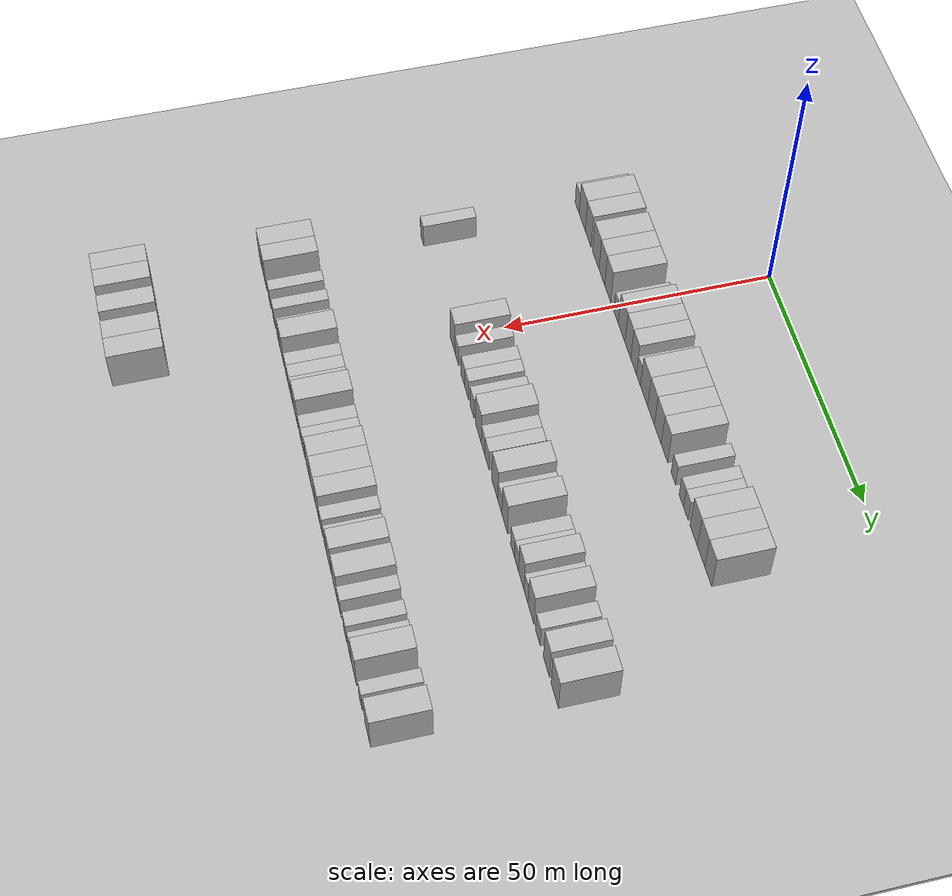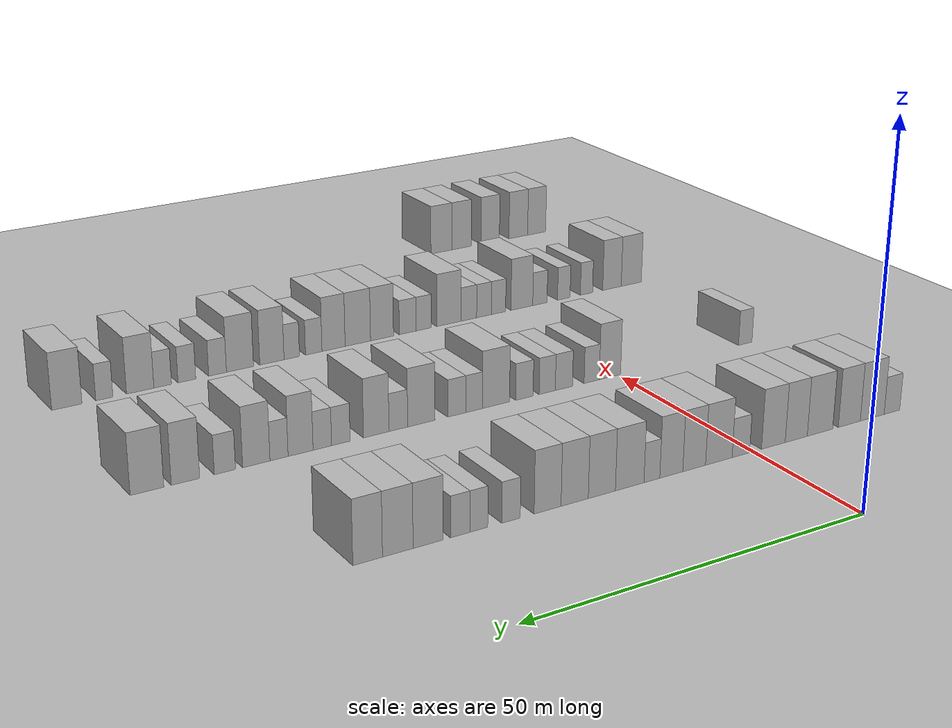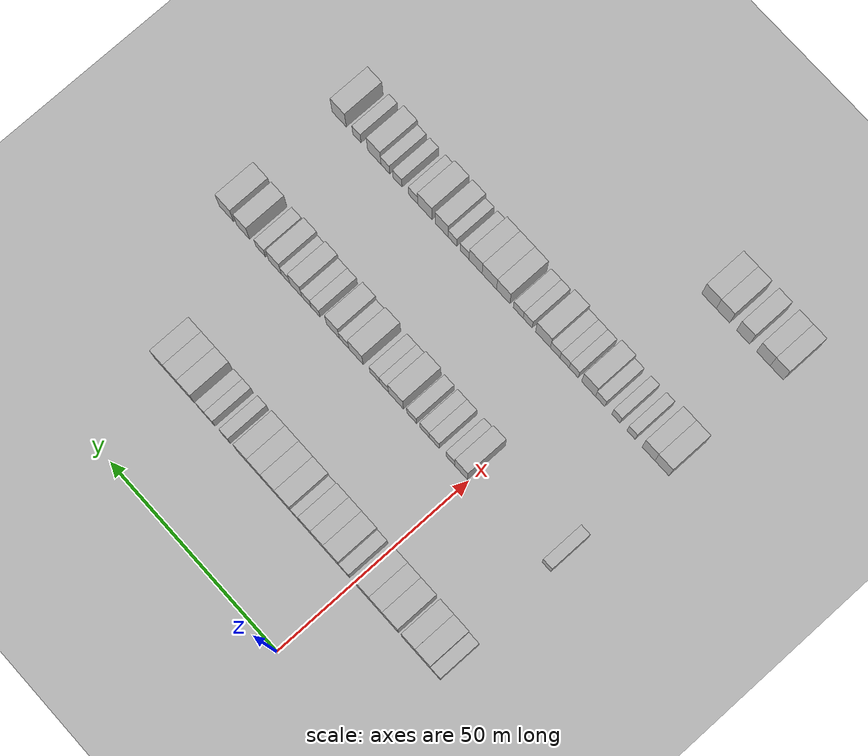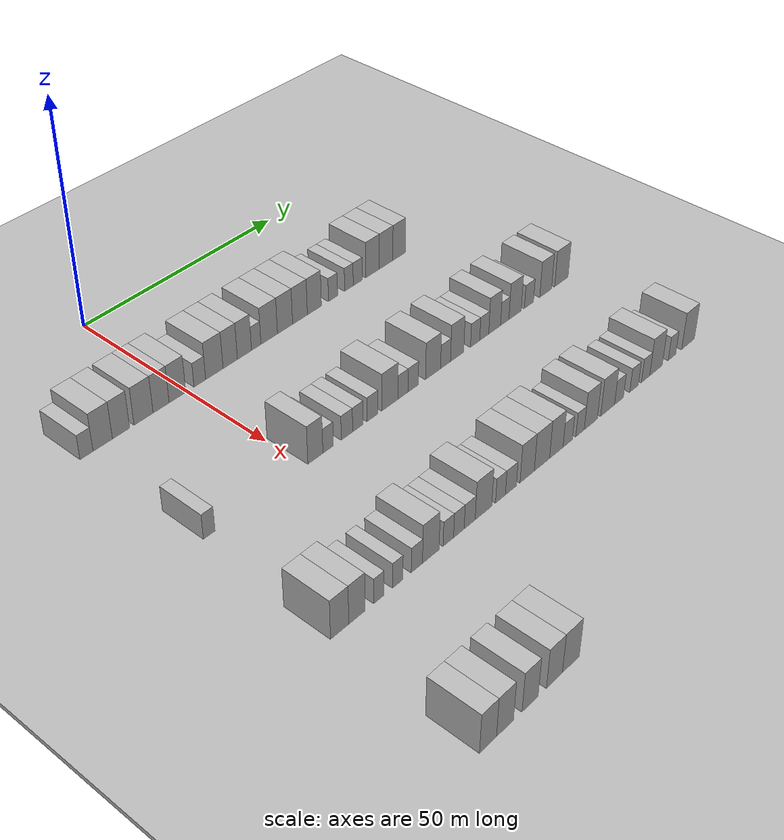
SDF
<sdf version="1.6">
 <world name="default">
  <include><name>ground_plane_1</name><uri>model://HANNAS_ground_plane</uri></include>
  <include>
   <name>ground_plane_2</name>
   <uri>model://HANNAS_ground_plane</uri>
   <pose>100 0 0  0 0 0</pose>
  </include>
  <model name="building_108">
   <static>1</static>
   <pose>25.0000 -23.7930 0 0.000000 0.000000 0.000000</pose>
   <link name="link">
    <pose>0 0 3.00 0 0 0</pose>
    <collision name="collision"><geometry><box><size>10.0000 2.8902 6.0000</size></box></geometry></collision>
    <visual name="visual">
     <cast_shadows>0</cast_shadows>
     <geometry><box><size>10.0000 2.8902 6.0000</size></box></geometry>
     <material>
      <script>
       <uri>model://HANNAS_wall/materials/scripts</uri>
       <uri>model://HANNAS_wall/materials/textures</uri>
       <name>vrc/HANNAS_wall</name>
      </script>
     </material>
    </visual>
   </link>
  </model>
  <model name="building_109">
   <static>1</static>
   <pose>25.0000 -20.1689 0 0.000000 0.000000 0.000000</pose>
   <link name="link">
    <pose>0 0 4.50 0 0 0</pose>
    <collision name="collision"><geometry><box><size>10.0000 4.3581 9.0000</size></box></geometry></collision>
    <visual name="visual">
     <cast_shadows>0</cast_shadows>
     <geometry><box><size>10.0000 4.3581 9.0000</size></box></geometry>
     <material>
      <script>
       <uri>model://HANNAS_wall/materials/scripts</uri>
       <uri>model://HANNAS_wall/materials/textures</uri>
       <name>vrc/HANNAS_wall</name>
      </script>
     </material>
    </visual>
   </link>
  </model>
  <model name="building_110">
   <static>1</static>
   <pose>25.0000 -16.0170 0 0.000000 0.000000 0.000000</pose>
   <link name="link">
    <pose>0 0 4.50 0 0 0</pose>
    <collision name="collision"><geometry><box><size>10.0000 3.9456 9.0000</size></box></geometry></collision>
    <visual name="visual">
     <cast_shadows>0</cast_shadows>
     <geometry><box><size>10.0000 3.9456 9.0000</size></box></geometry>
     <material>
      <script>
       <uri>model://HANNAS_wall/materials/scripts</uri>
       <uri>model://HANNAS_wall/materials/textures</uri>
       <name>vrc/HANNAS_wall</name>
      </script>
     </material>
    </visual>
   </link>
  </model>
  <model name="building_111">
   <static>1</static>
   <pose>25.0000 -10.8124 0 0.000000 0.000000 0.000000</pose>
   <link name="link">
    <pose>0 0 4.50 0 0 0</pose>
    <collision name="collision"><geometry><box><size>10.0000 4.4637 9.0000</size></box></geometry></collision>
    <visual name="visual">
     <cast_shadows>0</cast_shadows>
     <geometry><box><size>10.0000 4.4637 9.0000</size></box></geometry>
     <material>
      <script>
       <uri>model://HANNAS_wall/materials/scripts</uri>
       <uri>model://HANNAS_wall/materials/textures</uri>
       <name>vrc/HANNAS_wall</name>
      </script>
     </material>
    </visual>
   </link>
  </model>
  <model name="building_112">
   <static>1</static>
   <pose>25.0000 -6.6682 0 0.000000 0.000000 0.000000</pose>
   <link name="link">
    <pose>0 0 4.50 0 0 0</pose>
    <collision name="collision"><geometry><box><size>10.0000 3.8247 9.0000</size></box></geometry></collision>
    <visual name="visual">
     <cast_shadows>0</cast_shadows>
     <geometry><box><size>10.0000 3.8247 9.0000</size></box></geometry>
     <material>
      <script>
       <uri>model://HANNAS_wall/materials/scripts</uri>
       <uri>model://HANNAS_wall/materials/textures</uri>
       <name>vrc/HANNAS_wall</name>
      </script>
     </material>
    </visual>
   </link>
  </model>
  <model name="building_113">
   <static>1</static>
   <pose>25.0000 -2.7365 0 0.000000 0.000000 0.000000</pose>
   <link name="link">
    <pose>0 0 4.50 0 0 0</pose>
    <collision name="collision"><geometry><box><size>10.0000 4.0388 9.0000</size></box></geometry></collision>
    <visual name="visual">
     <cast_shadows>0</cast_shadows>
     <geometry><box><size>10.0000 4.0388 9.0000</size></box></geometry>
     <material>
      <script>
       <uri>model://HANNAS_wall/materials/scripts</uri>
       <uri>model://HANNAS_wall/materials/textures</uri>
       <name>vrc/HANNAS_wall</name>
      </script>
     </material>
    </visual>
   </link>
  </model>
  <model name="building_114">
   <static>1</static>
   <pose>25.0000 2.7343 0 0.000000 0.000000 0.000000</pose>
   <link name="link">
    <pose>0 0 3.00 0 0 0</pose>
    <collision name="collision"><geometry><box><size>10.0000 2.9027 6.0000</size></box></geometry></collision>
    <visual name="visual">
     <cast_shadows>0</cast_shadows>
     <geometry><box><size>10.0000 2.9027 6.0000</size></box></geometry>
     <material>
      <script>
       <uri>model://HANNAS_wall/materials/scripts</uri>
       <uri>model://HANNAS_wall/materials/textures</uri>
       <name>vrc/HANNAS_wall</name>
      </script>
     </material>
    </visual>
   </link>
  </model>
  <model name="building_115">
   <static>1</static>
   <pose>25.0000 6.3689 0 0.000000 0.000000 0.000000</pose>
   <link name="link">
    <pose>0 0 4.50 0 0 0</pose>
    <collision name="collision"><geometry><box><size>10.0000 4.3665 9.0000</size></box></geometry></collision>
    <visual name="visual">
     <cast_shadows>0</cast_shadows>
     <geometry><box><size>10.0000 4.3665 9.0000</size></box></geometry>
     <material>
      <script>
       <uri>model://HANNAS_wall/materials/scripts</uri>
       <uri>model://HANNAS_wall/materials/textures</uri>
       <name>vrc/HANNAS_wall</name>
      </script>
     </material>
    </visual>
   </link>
  </model>
  <model name="building_116">
   <static>1</static>
   <pose>25.0000 10.3899 0 0.000000 0.000000 0.000000</pose>
   <link name="link">
    <pose>0 0 4.50 0 0 0</pose>
    <collision name="collision"><geometry><box><size>10.0000 3.6756 9.0000</size></box></geometry></collision>
    <visual name="visual">
     <cast_shadows>0</cast_shadows>
     <geometry><box><size>10.0000 3.6756 9.0000</size></box></geometry>
     <material>
      <script>
       <uri>model://HANNAS_wall/materials/scripts</uri>
       <uri>model://HANNAS_wall/materials/textures</uri>
       <name>vrc/HANNAS_wall</name>
      </script>
     </material>
    </visual>
   </link>
  </model>
  <model name="building_117">
   <static>1</static>
   <pose>25.0000 14.0531 0 0.000000 0.000000 0.000000</pose>
   <link name="link">
    <pose>0 0 4.50 0 0 0</pose>
    <collision name="collision"><geometry><box><size>10.0000 3.6508 9.0000</size></box></geometry></collision>
    <visual name="visual">
     <cast_shadows>0</cast_shadows>
     <geometry><box><size>10.0000 3.6508 9.0000</size></box></geometry>
     <material>
      <script>
       <uri>model://HANNAS_wall/materials/scripts</uri>
       <uri>model://HANNAS_wall/materials/textures</uri>
       <name>vrc/HANNAS_wall</name>
      </script>
     </material>
    </visual>
   </link>
  </model>
  <model name="building_118">
   <static>1</static>
   <pose>25.0000 17.1193 0 0.000000 0.000000 0.000000</pose>
   <link name="link">
    <pose>0 0 3.00 0 0 0</pose>
    <collision name="collision"><geometry><box><size>10.0000 2.4816 6.0000</size></box></geometry></collision>
    <visual name="visual">
     <cast_shadows>0</cast_shadows>
     <geometry><box><size>10.0000 2.4816 6.0000</size></box></geometry>
     <material>
      <script>
       <uri>model://HANNAS_wall/materials/scripts</uri>
       <uri>model://HANNAS_wall/materials/textures</uri>
       <name>vrc/HANNAS_wall</name>
      </script>
     </material>
    </visual>
   </link>
  </model>
  <model name="building_119">
   <static>1</static>
   <pose>25.0000 20.5670 0 0.000000 0.000000 0.000000</pose>
   <link name="link">
    <pose>0 0 4.50 0 0 0</pose>
    <collision name="collision"><geometry><box><size>10.0000 4.4138 9.0000</size></box></geometry></collision>
    <visual name="visual">
     <cast_shadows>0</cast_shadows>
     <geometry><box><size>10.0000 4.4138 9.0000</size></box></geometry>
     <material>
      <script>
       <uri>model://HANNAS_wall/materials/scripts</uri>
       <uri>model://HANNAS_wall/materials/textures</uri>
       <name>vrc/HANNAS_wall</name>
      </script>
     </material>
    </visual>
   </link>
  </model>
  <model name="building_120">
   <static>1</static>
   <pose>25.0000 24.8281 0 0.000000 0.000000 0.000000</pose>
   <link name="link">
    <pose>0 0 4.50 0 0 0</pose>
    <collision name="collision"><geometry><box><size>10.0000 4.1083 9.0000</size></box></geometry></collision>
    <visual name="visual">
     <cast_shadows>0</cast_shadows>
     <geometry><box><size>10.0000 4.1083 9.0000</size></box></geometry>
     <material>
      <script>
       <uri>model://HANNAS_wall/materials/scripts</uri>
       <uri>model://HANNAS_wall/materials/textures</uri>
       <name>vrc/HANNAS_wall</name>
      </script>
     </material>
    </visual>
   </link>
  </model>
  <model name="building_121">
   <static>1</static>
   <pose>25.0000 28.9128 0 0.000000 0.000000 0.000000</pose>
   <link name="link">
    <pose>0 0 4.50 0 0 0</pose>
    <collision name="collision"><geometry><box><size>10.0000 4.0611 9.0000</size></box></geometry></collision>
    <visual name="visual">
     <cast_shadows>0</cast_shadows>
     <geometry><box><size>10.0000 4.0611 9.0000</size></box></geometry>
     <material>
      <script>
       <uri>model://HANNAS_wall/materials/scripts</uri>
       <uri>model://HANNAS_wall/materials/textures</uri>
       <name>vrc/HANNAS_wall</name>
      </script>
     </material>
    </visual>
   </link>
  </model>
  <model name="building_122">
   <static>1</static>
   <pose>25.0000 32.9144 0 0.000000 0.000000 0.000000</pose>
   <link name="link">
    <pose>0 0 4.50 0 0 0</pose>
    <collision name="collision"><geometry><box><size>10.0000 3.9421 9.0000</size></box></geometry></collision>
    <visual name="visual">
     <cast_shadows>0</cast_shadows>
     <geometry><box><size>10.0000 3.9421 9.0000</size></box></geometry>
     <material>
      <script>
       <uri>model://HANNAS_wall/materials/scripts</uri>
       <uri>model://HANNAS_wall/materials/textures</uri>
       <name>vrc/HANNAS_wall</name>
      </script>
     </material>
    </visual>
   </link>
  </model>
  <model name="building_123">
   <static>1</static>
   <pose>25.0000 38.2008 0 0.000000 0.000000 0.000000</pose>
   <link name="link">
    <pose>0 0 3.00 0 0 0</pose>
    <collision name="collision"><geometry><box><size>10.0000 2.6305 6.0000</size></box></geometry></collision>
    <visual name="visual">
     <cast_shadows>0</cast_shadows>
     <geometry><box><size>10.0000 2.6305 6.0000</size></box></geometry>
     <material>
      <script>
       <uri>model://HANNAS_wall/materials/scripts</uri>
       <uri>model://HANNAS_wall/materials/textures</uri>
       <name>vrc/HANNAS_wall</name>
      </script>
     </material>
    </visual>
   </link>
  </model>
  <model name="building_124">
   <static>1</static>
   <pose>25.0000 42.7710 0 0.000000 0.000000 0.000000</pose>
   <link name="link">
    <pose>0 0 3.00 0 0 0</pose>
    <collision name="collision"><geometry><box><size>10.0000 2.5099 6.0000</size></box></geometry></collision>
    <visual name="visual">
     <cast_shadows>0</cast_shadows>
     <geometry><box><size>10.0000 2.5099 6.0000</size></box></geometry>
     <material>
      <script>
       <uri>model://HANNAS_wall/materials/scripts</uri>
       <uri>model://HANNAS_wall/materials/textures</uri>
       <name>vrc/HANNAS_wall</name>
      </script>
     </material>
    </visual>
   </link>
  </model>
  <model name="building_125">
   <static>1</static>
   <pose>25.0000 45.3715 0 0.000000 0.000000 0.000000</pose>
   <link name="link">
    <pose>0 0 3.00 0 0 0</pose>
    <collision name="collision"><geometry><box><size>10.0000 2.6910 6.0000</size></box></geometry></collision>
    <visual name="visual">
     <cast_shadows>0</cast_shadows>
     <geometry><box><size>10.0000 2.6910 6.0000</size></box></geometry>
     <material>
      <script>
       <uri>model://HANNAS_wall/materials/scripts</uri>
       <uri>model://HANNAS_wall/materials/textures</uri>
       <name>vrc/HANNAS_wall</name>
      </script>
     </material>
    </visual>
   </link>
  </model>
  <model name="building_126">
   <static>1</static>
   <pose>25.0000 49.7589 0 0.000000 0.000000 0.000000</pose>
   <link name="link">
    <pose>0 0 4.50 0 0 0</pose>
    <collision name="collision"><geometry><box><size>10.0000 4.0838 9.0000</size></box></geometry></collision>
    <visual name="visual">
     <cast_shadows>0</cast_shadows>
     <geometry><box><size>10.0000 4.0838 9.0000</size></box></geometry>
     <material>
      <script>
       <uri>model://HANNAS_wall/materials/scripts</uri>
       <uri>model://HANNAS_wall/materials/textures</uri>
       <name>vrc/HANNAS_wall</name>
      </script>
     </material>
    </visual>
   </link>
  </model>
  <model name="building_127">
   <static>1</static>
   <pose>25.0000 53.8396 0 0.000000 0.000000 0.000000</pose>
   <link name="link">
    <pose>0 0 4.50 0 0 0</pose>
    <collision name="collision"><geometry><box><size>10.0000 4.0776 9.0000</size></box></geometry></collision>
    <visual name="visual">
     <cast_shadows>0</cast_shadows>
     <geometry><box><size>10.0000 4.0776 9.0000</size></box></geometry>
     <material>
      <script>
       <uri>model://HANNAS_wall/materials/scripts</uri>
       <uri>model://HANNAS_wall/materials/textures</uri>
       <name>vrc/HANNAS_wall</name>
      </script>
     </material>
    </visual>
   </link>
  </model>
  <model name="building_128">
   <static>1</static>
   <pose>25.0000 57.8211 0 0.000000 0.000000 0.000000</pose>
   <link name="link">
    <pose>0 0 4.50 0 0 0</pose>
    <collision name="collision"><geometry><box><size>10.0000 3.8853 9.0000</size></box></geometry></collision>
    <visual name="visual">
     <cast_shadows>0</cast_shadows>
     <geometry><box><size>10.0000 3.8853 9.0000</size></box></geometry>
     <material>
      <script>
       <uri>model://HANNAS_wall/materials/scripts</uri>
       <uri>model://HANNAS_wall/materials/textures</uri>
       <name>vrc/HANNAS_wall</name>
      </script>
     </material>
    </visual>
   </link>
  </model>
  <model name="building_331">
   <static>1</static>
   <pose>55.0000 -22.7726 0 0.000000 0.000000 0.000000</pose>
   <link name="link">
    <pose>0 0 3.00 0 0 0</pose>
    <collision name="collision"><geometry><box><size>10.0000 2.5860 6.0000</size></box></geometry></collision>
    <visual name="visual">
     <cast_shadows>0</cast_shadows>
     <geometry><box><size>10.0000 2.5860 6.0000</size></box></geometry>
     <material>
      <script>
       <uri>model://HANNAS_wall/materials/scripts</uri>
       <uri>model://HANNAS_wall/materials/textures</uri>
       <name>vrc/HANNAS_wall</name>
      </script>
     </material>
    </visual>
   </link>
  </model>
  <model name="building_332">
   <static>1</static>
   <pose>55.0000 2.1369 0 0.000000 0.000000 0.000000</pose>
   <link name="link">
    <pose>0 0 4.50 0 0 0</pose>
    <collision name="collision"><geometry><box><size>10.0000 3.7443 9.0000</size></box></geometry></collision>
    <visual name="visual">
     <cast_shadows>0</cast_shadows>
     <geometry><box><size>10.0000 3.7443 9.0000</size></box></geometry>
     <material>
      <script>
       <uri>model://HANNAS_wall/materials/scripts</uri>
       <uri>model://HANNAS_wall/materials/textures</uri>
       <name>vrc/HANNAS_wall</name>
      </script>
     </material>
    </visual>
   </link>
  </model>
  <model name="building_333">
   <static>1</static>
   <pose>55.0000 5.3281 0 0.000000 0.000000 0.000000</pose>
   <link name="link">
    <pose>0 0 3.00 0 0 0</pose>
    <collision name="collision"><geometry><box><size>10.0000 2.6382 6.0000</size></box></geometry></collision>
    <visual name="visual">
     <cast_shadows>0</cast_shadows>
     <geometry><box><size>10.0000 2.6382 6.0000</size></box></geometry>
     <material>
      <script>
       <uri>model://HANNAS_wall/materials/scripts</uri>
       <uri>model://HANNAS_wall/materials/textures</uri>
       <name>vrc/HANNAS_wall</name>
      </script>
     </material>
    </visual>
   </link>
  </model>
  <model name="building_334">
   <static>1</static>
   <pose>55.0000 10.1101 0 0.000000 0.000000 0.000000</pose>
   <link name="link">
    <pose>0 0 3.00 0 0 0</pose>
    <collision name="collision"><geometry><box><size>10.0000 2.9258 6.0000</size></box></geometry></collision>
    <visual name="visual">
     <cast_shadows>0</cast_shadows>
     <geometry><box><size>10.0000 2.9258 6.0000</size></box></geometry>
     <material>
      <script>
       <uri>model://HANNAS_wall/materials/scripts</uri>
       <uri>model://HANNAS_wall/materials/textures</uri>
       <name>vrc/HANNAS_wall</name>
      </script>
     </material>
    </visual>
   </link>
  </model>
  <model name="building_335">
   <static>1</static>
   <pose>55.0000 12.9443 0 0.000000 0.000000 0.000000</pose>
   <link name="link">
    <pose>0 0 3.00 0 0 0</pose>
    <collision name="collision"><geometry><box><size>10.0000 2.7425 6.0000</size></box></geometry></collision>
    <visual name="visual">
     <cast_shadows>0</cast_shadows>
     <geometry><box><size>10.0000 2.7425 6.0000</size></box></geometry>
     <material>
      <script>
       <uri>model://HANNAS_wall/materials/scripts</uri>
       <uri>model://HANNAS_wall/materials/textures</uri>
       <name>vrc/HANNAS_wall</name>
      </script>
     </material>
    </visual>
   </link>
  </model>
  <model name="building_336">
   <static>1</static>
   <pose>55.0000 16.7691 0 0.000000 0.000000 0.000000</pose>
   <link name="link">
    <pose>0 0 3.00 0 0 0</pose>
    <collision name="collision"><geometry><box><size>10.0000 2.9071 6.0000</size></box></geometry></collision>
    <visual name="visual">
     <cast_shadows>0</cast_shadows>
     <geometry><box><size>10.0000 2.9071 6.0000</size></box></geometry>
     <material>
      <script>
       <uri>model://HANNAS_wall/materials/scripts</uri>
       <uri>model://HANNAS_wall/materials/textures</uri>
       <name>vrc/HANNAS_wall</name>
      </script>
     </material>
    </visual>
   </link>
  </model>
  <model name="building_337">
   <static>1</static>
   <pose>55.0000 21.4393 0 0.000000 0.000000 0.000000</pose>
   <link name="link">
    <pose>0 0 4.50 0 0 0</pose>
    <collision name="collision"><geometry><box><size>10.0000 4.4333 9.0000</size></box></geometry></collision>
    <visual name="visual">
     <cast_shadows>0</cast_shadows>
     <geometry><box><size>10.0000 4.4333 9.0000</size></box></geometry>
     <material>
      <script>
       <uri>model://HANNAS_wall/materials/scripts</uri>
       <uri>model://HANNAS_wall/materials/textures</uri>
       <name>vrc/HANNAS_wall</name>
      </script>
     </material>
    </visual>
   </link>
  </model>
  <model name="building_338">
   <static>1</static>
   <pose>55.0000 24.9954 0 0.000000 0.000000 0.000000</pose>
   <link name="link">
    <pose>0 0 3.00 0 0 0</pose>
    <collision name="collision"><geometry><box><size>10.0000 2.6789 6.0000</size></box></geometry></collision>
    <visual name="visual">
     <cast_shadows>0</cast_shadows>
     <geometry><box><size>10.0000 2.6789 6.0000</size></box></geometry>
     <material>
      <script>
       <uri>model://HANNAS_wall/materials/scripts</uri>
       <uri>model://HANNAS_wall/materials/textures</uri>
       <name>vrc/HANNAS_wall</name>
      </script>
     </material>
    </visual>
   </link>
  </model>
  <model name="building_339">
   <static>1</static>
   <pose>55.0000 27.7844 0 0.000000 0.000000 0.000000</pose>
   <link name="link">
    <pose>0 0 3.00 0 0 0</pose>
    <collision name="collision"><geometry><box><size>10.0000 2.8991 6.0000</size></box></geometry></collision>
    <visual name="visual">
     <cast_shadows>0</cast_shadows>
     <geometry><box><size>10.0000 2.8991 6.0000</size></box></geometry>
     <material>
      <script>
       <uri>model://HANNAS_wall/materials/scripts</uri>
       <uri>model://HANNAS_wall/materials/textures</uri>
       <name>vrc/HANNAS_wall</name>
      </script>
     </material>
    </visual>
   </link>
  </model>
  <model name="building_340">
   <static>1</static>
   <pose>55.0000 33.3721 0 0.000000 0.000000 0.000000</pose>
   <link name="link">
    <pose>0 0 4.50 0 0 0</pose>
    <collision name="collision"><geometry><box><size>10.0000 4.2763 9.0000</size></box></geometry></collision>
    <visual name="visual">
     <cast_shadows>0</cast_shadows>
     <geometry><box><size>10.0000 4.2763 9.0000</size></box></geometry>
     <material>
      <script>
       <uri>model://HANNAS_wall/materials/scripts</uri>
       <uri>model://HANNAS_wall/materials/textures</uri>
       <name>vrc/HANNAS_wall</name>
      </script>
     </material>
    </visual>
   </link>
  </model>
  <model name="building_341">
   <static>1</static>
   <pose>55.0000 36.9434 0 0.000000 0.000000 0.000000</pose>
   <link name="link">
    <pose>0 0 3.00 0 0 0</pose>
    <collision name="collision"><geometry><box><size>10.0000 2.8663 6.0000</size></box></geometry></collision>
    <visual name="visual">
     <cast_shadows>0</cast_shadows>
     <geometry><box><size>10.0000 2.8663 6.0000</size></box></geometry>
     <material>
      <script>
       <uri>model://HANNAS_wall/materials/scripts</uri>
       <uri>model://HANNAS_wall/materials/textures</uri>
       <name>vrc/HANNAS_wall</name>
      </script>
     </material>
    </visual>
   </link>
  </model>
  <model name="building_342">
   <static>1</static>
   <pose>55.0000 40.3128 0 0.000000 0.000000 0.000000</pose>
   <link name="link">
    <pose>0 0 4.50 0 0 0</pose>
    <collision name="collision"><geometry><box><size>10.0000 3.8726 9.0000</size></box></geometry></collision>
    <visual name="visual">
     <cast_shadows>0</cast_shadows>
     <geometry><box><size>10.0000 3.8726 9.0000</size></box></geometry>
     <material>
      <script>
       <uri>model://HANNAS_wall/materials/scripts</uri>
       <uri>model://HANNAS_wall/materials/textures</uri>
       <name>vrc/HANNAS_wall</name>
      </script>
     </material>
    </visual>
   </link>
  </model>
  <model name="building_343">
   <static>1</static>
   <pose>55.0000 45.6259 0 0.000000 0.000000 0.000000</pose>
   <link name="link">
    <pose>0 0 3.00 0 0 0</pose>
    <collision name="collision"><geometry><box><size>10.0000 2.7536 6.0000</size></box></geometry></collision>
    <visual name="visual">
     <cast_shadows>0</cast_shadows>
     <geometry><box><size>10.0000 2.7536 6.0000</size></box></geometry>
     <material>
      <script>
       <uri>model://HANNAS_wall/materials/scripts</uri>
       <uri>model://HANNAS_wall/materials/textures</uri>
       <name>vrc/HANNAS_wall</name>
      </script>
     </material>
    </visual>
   </link>
  </model>
  <model name="building_344">
   <static>1</static>
   <pose>55.0000 48.3600 0 0.000000 0.000000 0.000000</pose>
   <link name="link">
    <pose>0 0 3.00 0 0 0</pose>
    <collision name="collision"><geometry><box><size>10.0000 2.7145 6.0000</size></box></geometry></collision>
    <visual name="visual">
     <cast_shadows>0</cast_shadows>
     <geometry><box><size>10.0000 2.7145 6.0000</size></box></geometry>
     <material>
      <script>
       <uri>model://HANNAS_wall/materials/scripts</uri>
       <uri>model://HANNAS_wall/materials/textures</uri>
       <name>vrc/HANNAS_wall</name>
      </script>
     </material>
    </visual>
   </link>
  </model>
  <model name="building_345">
   <static>1</static>
   <pose>55.0000 51.5289 0 0.000000 0.000000 0.000000</pose>
   <link name="link">
    <pose>0 0 4.50 0 0 0</pose>
    <collision name="collision"><geometry><box><size>10.0000 3.6233 9.0000</size></box></geometry></collision>
    <visual name="visual">
     <cast_shadows>0</cast_shadows>
     <geometry><box><size>10.0000 3.6233 9.0000</size></box></geometry>
     <material>
      <script>
       <uri>model://HANNAS_wall/materials/scripts</uri>
       <uri>model://HANNAS_wall/materials/textures</uri>
       <name>vrc/HANNAS_wall</name>
      </script>
     </material>
    </visual>
   </link>
  </model>
  <model name="building_346">
   <static>1</static>
   <pose>55.0000 54.6383 0 0.000000 0.000000 0.000000</pose>
   <link name="link">
    <pose>0 0 3.00 0 0 0</pose>
    <collision name="collision"><geometry><box><size>10.0000 2.5955 6.0000</size></box></geometry></collision>
    <visual name="visual">
     <cast_shadows>0</cast_shadows>
     <geometry><box><size>10.0000 2.5955 6.0000</size></box></geometry>
     <material>
      <script>
       <uri>model://HANNAS_wall/materials/scripts</uri>
       <uri>model://HANNAS_wall/materials/textures</uri>
       <name>vrc/HANNAS_wall</name>
      </script>
     </material>
    </visual>
   </link>
  </model>
  <model name="building_347">
   <static>1</static>
   <pose>55.0000 57.8665 0 0.000000 0.000000 0.000000</pose>
   <link name="link">
    <pose>0 0 4.50 0 0 0</pose>
    <collision name="collision"><geometry><box><size>10.0000 3.8610 9.0000</size></box></geometry></collision>
    <visual name="visual">
     <cast_shadows>0</cast_shadows>
     <geometry><box><size>10.0000 3.8610 9.0000</size></box></geometry>
     <material>
      <script>
       <uri>model://HANNAS_wall/materials/scripts</uri>
       <uri>model://HANNAS_wall/materials/textures</uri>
       <name>vrc/HANNAS_wall</name>
      </script>
     </material>
    </visual>
   </link>
  </model>
  <model name="building_348">
   <static>1</static>
   <pose>55.0000 62.2658 0 0.000000 0.000000 0.000000</pose>
   <link name="link">
    <pose>0 0 3.00 0 0 0</pose>
    <collision name="collision"><geometry><box><size>10.0000 2.9376 6.0000</size></box></geometry></collision>
    <visual name="visual">
     <cast_shadows>0</cast_shadows>
     <geometry><box><size>10.0000 2.9376 6.0000</size></box></geometry>
     <material>
      <script>
       <uri>model://HANNAS_wall/materials/scripts</uri>
       <uri>model://HANNAS_wall/materials/textures</uri>
       <name>vrc/HANNAS_wall</name>
      </script>
     </material>
    </visual>
   </link>
  </model>
  <model name="building_349">
   <static>1</static>
   <pose>55.0000 67.6626 0 0.000000 0.000000 0.000000</pose>
   <link name="link">
    <pose>0 0 4.50 0 0 0</pose>
    <collision name="collision"><geometry><box><size>10.0000 3.8560 9.0000</size></box></geometry></collision>
    <visual name="visual">
     <cast_shadows>0</cast_shadows>
     <geometry><box><size>10.0000 3.8560 9.0000</size></box></geometry>
     <material>
      <script>
       <uri>model://HANNAS_wall/materials/scripts</uri>
       <uri>model://HANNAS_wall/materials/textures</uri>
       <name>vrc/HANNAS_wall</name>
      </script>
     </material>
    </visual>
   </link>
  </model>
  <model name="building_350">
   <static>1</static>
   <pose>55.0000 72.8275 0 0.000000 0.000000 0.000000</pose>
   <link name="link">
    <pose>0 0 4.50 0 0 0</pose>
    <collision name="collision"><geometry><box><size>10.0000 4.4738 9.0000</size></box></geometry></collision>
    <visual name="visual">
     <cast_shadows>0</cast_shadows>
     <geometry><box><size>10.0000 4.4738 9.0000</size></box></geometry>
     <material>
      <script>
       <uri>model://HANNAS_wall/materials/scripts</uri>
       <uri>model://HANNAS_wall/materials/textures</uri>
       <name>vrc/HANNAS_wall</name>
      </script>
     </material>
    </visual>
   </link>
  </model>
  <model name="building_547">
   <static>1</static>
   <pose>85.0000 -23.6087 0 0.000000 0.000000 0.000000</pose>
   <link name="link">
    <pose>0 0 4.50 0 0 0</pose>
    <collision name="collision"><geometry><box><size>10.0000 4.0568 9.0000</size></box></geometry></collision>
    <visual name="visual">
     <cast_shadows>0</cast_shadows>
     <geometry><box><size>10.0000 4.0568 9.0000</size></box></geometry>
     <material>
      <script>
       <uri>model://HANNAS_wall/materials/scripts</uri>
       <uri>model://HANNAS_wall/materials/textures</uri>
       <name>vrc/HANNAS_wall</name>
      </script>
     </material>
    </visual>
   </link>
  </model>
  <model name="building_548">
   <static>1</static>
   <pose>85.0000 -19.7317 0 0.000000 0.000000 0.000000</pose>
   <link name="link">
    <pose>0 0 4.50 0 0 0</pose>
    <collision name="collision"><geometry><box><size>10.0000 3.6972 9.0000</size></box></geometry></collision>
    <visual name="visual">
     <cast_shadows>0</cast_shadows>
     <geometry><box><size>10.0000 3.6972 9.0000</size></box></geometry>
     <material>
      <script>
       <uri>model://HANNAS_wall/materials/scripts</uri>
       <uri>model://HANNAS_wall/materials/textures</uri>
       <name>vrc/HANNAS_wall</name>
      </script>
     </material>
    </visual>
   </link>
  </model>
  <model name="building_549">
   <static>1</static>
   <pose>85.0000 -14.6829 0 0.000000 0.000000 0.000000</pose>
   <link name="link">
    <pose>0 0 3.00 0 0 0</pose>
    <collision name="collision"><geometry><box><size>10.0000 2.4006 6.0000</size></box></geometry></collision>
    <visual name="visual">
     <cast_shadows>0</cast_shadows>
     <geometry><box><size>10.0000 2.4006 6.0000</size></box></geometry>
     <material>
      <script>
       <uri>model://HANNAS_wall/materials/scripts</uri>
       <uri>model://HANNAS_wall/materials/textures</uri>
       <name>vrc/HANNAS_wall</name>
      </script>
     </material>
    </visual>
   </link>
  </model>
  <model name="building_550">
   <static>1</static>
   <pose>85.0000 -10.2678 0 0.000000 0.000000 0.000000</pose>
   <link name="link">
    <pose>0 0 3.00 0 0 0</pose>
    <collision name="collision"><geometry><box><size>10.0000 2.4296 6.0000</size></box></geometry></collision>
    <visual name="visual">
     <cast_shadows>0</cast_shadows>
     <geometry><box><size>10.0000 2.4296 6.0000</size></box></geometry>
     <material>
      <script>
       <uri>model://HANNAS_wall/materials/scripts</uri>
       <uri>model://HANNAS_wall/materials/textures</uri>
       <name>vrc/HANNAS_wall</name>
      </script>
     </material>
    </visual>
   </link>
  </model>
  <model name="building_551">
   <static>1</static>
   <pose>85.0000 -5.6872 0 0.000000 0.000000 0.000000</pose>
   <link name="link">
    <pose>0 0 3.00 0 0 0</pose>
    <collision name="collision"><geometry><box><size>10.0000 2.7316 6.0000</size></box></geometry></collision>
    <visual name="visual">
     <cast_shadows>0</cast_shadows>
     <geometry><box><size>10.0000 2.7316 6.0000</size></box></geometry>
     <material>
      <script>
       <uri>model://HANNAS_wall/materials/scripts</uri>
       <uri>model://HANNAS_wall/materials/textures</uri>
       <name>vrc/HANNAS_wall</name>
      </script>
     </material>
    </visual>
   </link>
  </model>
  <model name="building_552">
   <static>1</static>
   <pose>85.0000 -2.2752 0 0.000000 0.000000 0.000000</pose>
   <link name="link">
    <pose>0 0 4.50 0 0 0</pose>
    <collision name="collision"><geometry><box><size>10.0000 4.0924 9.0000</size></box></geometry></collision>
    <visual name="visual">
     <cast_shadows>0</cast_shadows>
     <geometry><box><size>10.0000 4.0924 9.0000</size></box></geometry>
     <material>
      <script>
       <uri>model://HANNAS_wall/materials/scripts</uri>
       <uri>model://HANNAS_wall/materials/textures</uri>
       <name>vrc/HANNAS_wall</name>
      </script>
     </material>
    </visual>
   </link>
  </model>
  <model name="building_553">
   <static>1</static>
   <pose>85.0000 2.0993 0 0.000000 0.000000 0.000000</pose>
   <link name="link">
    <pose>0 0 3.00 0 0 0</pose>
    <collision name="collision"><geometry><box><size>10.0000 2.6566 6.0000</size></box></geometry></collision>
    <visual name="visual">
     <cast_shadows>0</cast_shadows>
     <geometry><box><size>10.0000 2.6566 6.0000</size></box></geometry>
     <material>
      <script>
       <uri>model://HANNAS_wall/materials/scripts</uri>
       <uri>model://HANNAS_wall/materials/textures</uri>
       <name>vrc/HANNAS_wall</name>
      </script>
     </material>
    </visual>
   </link>
  </model>
  <model name="building_554">
   <static>1</static>
   <pose>85.0000 4.7777 0 0.000000 0.000000 0.000000</pose>
   <link name="link">
    <pose>0 0 3.00 0 0 0</pose>
    <collision name="collision"><geometry><box><size>10.0000 2.7002 6.0000</size></box></geometry></collision>
    <visual name="visual">
     <cast_shadows>0</cast_shadows>
     <geometry><box><size>10.0000 2.7002 6.0000</size></box></geometry>
     <material>
      <script>
       <uri>model://HANNAS_wall/materials/scripts</uri>
       <uri>model://HANNAS_wall/materials/textures</uri>
       <name>vrc/HANNAS_wall</name>
      </script>
     </material>
    </visual>
   </link>
  </model>
  <model name="building_555">
   <static>1</static>
   <pose>85.0000 7.5490 0 0.000000 0.000000 0.000000</pose>
   <link name="link">
    <pose>0 0 3.00 0 0 0</pose>
    <collision name="collision"><geometry><box><size>10.0000 2.8424 6.0000</size></box></geometry></collision>
    <visual name="visual">
     <cast_shadows>0</cast_shadows>
     <geometry><box><size>10.0000 2.8424 6.0000</size></box></geometry>
     <material>
      <script>
       <uri>model://HANNAS_wall/materials/scripts</uri>
       <uri>model://HANNAS_wall/materials/textures</uri>
       <name>vrc/HANNAS_wall</name>
      </script>
     </material>
    </visual>
   </link>
  </model>
  <model name="building_556">
   <static>1</static>
   <pose>85.0000 11.1495 0 0.000000 0.000000 0.000000</pose>
   <link name="link">
    <pose>0 0 4.50 0 0 0</pose>
    <collision name="collision"><geometry><box><size>10.0000 4.3586 9.0000</size></box></geometry></collision>
    <visual name="visual">
     <cast_shadows>0</cast_shadows>
     <geometry><box><size>10.0000 4.3586 9.0000</size></box></geometry>
     <material>
      <script>
       <uri>model://HANNAS_wall/materials/scripts</uri>
       <uri>model://HANNAS_wall/materials/textures</uri>
       <name>vrc/HANNAS_wall</name>
      </script>
     </material>
    </visual>
   </link>
  </model>
  <model name="building_557">
   <static>1</static>
   <pose>85.0000 15.6539 0 0.000000 0.000000 0.000000</pose>
   <link name="link">
    <pose>0 0 3.00 0 0 0</pose>
    <collision name="collision"><geometry><box><size>10.0000 2.6503 6.0000</size></box></geometry></collision>
    <visual name="visual">
     <cast_shadows>0</cast_shadows>
     <geometry><box><size>10.0000 2.6503 6.0000</size></box></geometry>
     <material>
      <script>
       <uri>model://HANNAS_wall/materials/scripts</uri>
       <uri>model://HANNAS_wall/materials/textures</uri>
       <name>vrc/HANNAS_wall</name>
      </script>
     </material>
    </visual>
   </link>
  </model>
  <model name="building_558">
   <static>1</static>
   <pose>85.0000 18.4653 0 0.000000 0.000000 0.000000</pose>
   <link name="link">
    <pose>0 0 3.00 0 0 0</pose>
    <collision name="collision"><geometry><box><size>10.0000 2.9724 6.0000</size></box></geometry></collision>
    <visual name="visual">
     <cast_shadows>0</cast_shadows>
     <geometry><box><size>10.0000 2.9724 6.0000</size></box></geometry>
     <material>
      <script>
       <uri>model://HANNAS_wall/materials/scripts</uri>
       <uri>model://HANNAS_wall/materials/textures</uri>
       <name>vrc/HANNAS_wall</name>
      </script>
     </material>
    </visual>
   </link>
  </model>
  <model name="building_559">
   <static>1</static>
   <pose>85.0000 22.9301 0 0.000000 0.000000 0.000000</pose>
   <link name="link">
    <pose>0 0 4.50 0 0 0</pose>
    <collision name="collision"><geometry><box><size>10.0000 3.9573 9.0000</size></box></geometry></collision>
    <visual name="visual">
     <cast_shadows>0</cast_shadows>
     <geometry><box><size>10.0000 3.9573 9.0000</size></box></geometry>
     <material>
      <script>
       <uri>model://HANNAS_wall/materials/scripts</uri>
       <uri>model://HANNAS_wall/materials/textures</uri>
       <name>vrc/HANNAS_wall</name>
      </script>
     </material>
    </visual>
   </link>
  </model>
  <model name="building_560">
   <static>1</static>
   <pose>85.0000 27.0697 0 0.000000 0.000000 0.000000</pose>
   <link name="link">
    <pose>0 0 4.50 0 0 0</pose>
    <collision name="collision"><geometry><box><size>10.0000 4.3219 9.0000</size></box></geometry></collision>
    <visual name="visual">
     <cast_shadows>0</cast_shadows>
     <geometry><box><size>10.0000 4.3219 9.0000</size></box></geometry>
     <material>
      <script>
       <uri>model://HANNAS_wall/materials/scripts</uri>
       <uri>model://HANNAS_wall/materials/textures</uri>
       <name>vrc/HANNAS_wall</name>
      </script>
     </material>
    </visual>
   </link>
  </model>
  <model name="building_561">
   <static>1</static>
   <pose>85.0000 31.1710 0 0.000000 0.000000 0.000000</pose>
   <link name="link">
    <pose>0 0 4.50 0 0 0</pose>
    <collision name="collision"><geometry><box><size>10.0000 3.8808 9.0000</size></box></geometry></collision>
    <visual name="visual">
     <cast_shadows>0</cast_shadows>
     <geometry><box><size>10.0000 3.8808 9.0000</size></box></geometry>
     <material>
      <script>
       <uri>model://HANNAS_wall/materials/scripts</uri>
       <uri>model://HANNAS_wall/materials/textures</uri>
       <name>vrc/HANNAS_wall</name>
      </script>
     </material>
    </visual>
   </link>
  </model>
  <model name="building_562">
   <static>1</static>
   <pose>85.0000 34.4739 0 0.000000 0.000000 0.000000</pose>
   <link name="link">
    <pose>0 0 3.00 0 0 0</pose>
    <collision name="collision"><geometry><box><size>10.0000 2.7250 6.0000</size></box></geometry></collision>
    <visual name="visual">
     <cast_shadows>0</cast_shadows>
     <geometry><box><size>10.0000 2.7250 6.0000</size></box></geometry>
     <material>
      <script>
       <uri>model://HANNAS_wall/materials/scripts</uri>
       <uri>model://HANNAS_wall/materials/textures</uri>
       <name>vrc/HANNAS_wall</name>
      </script>
     </material>
    </visual>
   </link>
  </model>
  <model name="building_563">
   <static>1</static>
   <pose>85.0000 38.0958 0 0.000000 0.000000 0.000000</pose>
   <link name="link">
    <pose>0 0 3.00 0 0 0</pose>
    <collision name="collision"><geometry><box><size>10.0000 2.5189 6.0000</size></box></geometry></collision>
    <visual name="visual">
     <cast_shadows>0</cast_shadows>
     <geometry><box><size>10.0000 2.5189 6.0000</size></box></geometry>
     <material>
      <script>
       <uri>model://HANNAS_wall/materials/scripts</uri>
       <uri>model://HANNAS_wall/materials/textures</uri>
       <name>vrc/HANNAS_wall</name>
      </script>
     </material>
    </visual>
   </link>
  </model>
  <model name="building_564">
   <static>1</static>
   <pose>85.0000 41.3169 0 0.000000 0.000000 0.000000</pose>
   <link name="link">
    <pose>0 0 4.50 0 0 0</pose>
    <collision name="collision"><geometry><box><size>10.0000 3.9232 9.0000</size></box></geometry></collision>
    <visual name="visual">
     <cast_shadows>0</cast_shadows>
     <geometry><box><size>10.0000 3.9232 9.0000</size></box></geometry>
     <material>
      <script>
       <uri>model://HANNAS_wall/materials/scripts</uri>
       <uri>model://HANNAS_wall/materials/textures</uri>
       <name>vrc/HANNAS_wall</name>
      </script>
     </material>
    </visual>
   </link>
  </model>
  <model name="building_565">
   <static>1</static>
   <pose>85.0000 46.4227 0 0.000000 0.000000 0.000000</pose>
   <link name="link">
    <pose>0 0 4.50 0 0 0</pose>
    <collision name="collision"><geometry><box><size>10.0000 4.2883 9.0000</size></box></geometry></collision>
    <visual name="visual">
     <cast_shadows>0</cast_shadows>
     <geometry><box><size>10.0000 4.2883 9.0000</size></box></geometry>
     <material>
      <script>
       <uri>model://HANNAS_wall/materials/scripts</uri>
       <uri>model://HANNAS_wall/materials/textures</uri>
       <name>vrc/HANNAS_wall</name>
      </script>
     </material>
    </visual>
   </link>
  </model>
  <model name="building_566">
   <static>1</static>
   <pose>85.0000 49.9571 0 0.000000 0.000000 0.000000</pose>
   <link name="link">
    <pose>0 0 3.00 0 0 0</pose>
    <collision name="collision"><geometry><box><size>10.0000 2.7805 6.0000</size></box></geometry></collision>
    <visual name="visual">
     <cast_shadows>0</cast_shadows>
     <geometry><box><size>10.0000 2.7805 6.0000</size></box></geometry>
     <material>
      <script>
       <uri>model://HANNAS_wall/materials/scripts</uri>
       <uri>model://HANNAS_wall/materials/textures</uri>
       <name>vrc/HANNAS_wall</name>
      </script>
     </material>
    </visual>
   </link>
  </model>
  <model name="building_567">
   <static>1</static>
   <pose>85.0000 54.7105 0 0.000000 0.000000 0.000000</pose>
   <link name="link">
    <pose>0 0 3.00 0 0 0</pose>
    <collision name="collision"><geometry><box><size>10.0000 2.7264 6.0000</size></box></geometry></collision>
    <visual name="visual">
     <cast_shadows>0</cast_shadows>
     <geometry><box><size>10.0000 2.7264 6.0000</size></box></geometry>
     <material>
      <script>
       <uri>model://HANNAS_wall/materials/scripts</uri>
       <uri>model://HANNAS_wall/materials/textures</uri>
       <name>vrc/HANNAS_wall</name>
      </script>
     </material>
    </visual>
   </link>
  </model>
  <model name="building_568">
   <static>1</static>
   <pose>85.0000 58.4051 0 0.000000 0.000000 0.000000</pose>
   <link name="link">
    <pose>0 0 3.00 0 0 0</pose>
    <collision name="collision"><geometry><box><size>10.0000 2.6628 6.0000</size></box></geometry></collision>
    <visual name="visual">
     <cast_shadows>0</cast_shadows>
     <geometry><box><size>10.0000 2.6628 6.0000</size></box></geometry>
     <material>
      <script>
       <uri>model://HANNAS_wall/materials/scripts</uri>
       <uri>model://HANNAS_wall/materials/textures</uri>
       <name>vrc/HANNAS_wall</name>
      </script>
     </material>
    </visual>
   </link>
  </model>
  <model name="building_569">
   <static>1</static>
   <pose>85.0000 61.7914 0 0.000000 0.000000 0.000000</pose>
   <link name="link">
    <pose>0 0 4.50 0 0 0</pose>
    <collision name="collision"><geometry><box><size>10.0000 4.1099 9.0000</size></box></geometry></collision>
    <visual name="visual">
     <cast_shadows>0</cast_shadows>
     <geometry><box><size>10.0000 4.1099 9.0000</size></box></geometry>
     <material>
      <script>
       <uri>model://HANNAS_wall/materials/scripts</uri>
       <uri>model://HANNAS_wall/materials/textures</uri>
       <name>vrc/HANNAS_wall</name>
      </script>
     </material>
    </visual>
   </link>
  </model>
  <model name="building_570">
   <static>1</static>
   <pose>85.0000 67.1035 0 0.000000 0.000000 0.000000</pose>
   <link name="link">
    <pose>0 0 3.00 0 0 0</pose>
    <collision name="collision"><geometry><box><size>10.0000 2.5144 6.0000</size></box></geometry></collision>
    <visual name="visual">
     <cast_shadows>0</cast_shadows>
     <geometry><box><size>10.0000 2.5144 6.0000</size></box></geometry>
     <material>
      <script>
       <uri>model://HANNAS_wall/materials/scripts</uri>
       <uri>model://HANNAS_wall/materials/textures</uri>
       <name>vrc/HANNAS_wall</name>
      </script>
     </material>
    </visual>
   </link>
  </model>
  <model name="building_571">
   <static>1</static>
   <pose>85.0000 72.5379 0 0.000000 0.000000 0.000000</pose>
   <link name="link">
    <pose>0 0 4.50 0 0 0</pose>
    <collision name="collision"><geometry><box><size>10.0000 4.3543 9.0000</size></box></geometry></collision>
    <visual name="visual">
     <cast_shadows>0</cast_shadows>
     <geometry><box><size>10.0000 4.3543 9.0000</size></box></geometry>
     <material>
      <script>
       <uri>model://HANNAS_wall/materials/scripts</uri>
       <uri>model://HANNAS_wall/materials/textures</uri>
       <name>vrc/HANNAS_wall</name>
      </script>
     </material>
    </visual>
   </link>
  </model>
  <model name="building_779">
   <static>1</static>
   <pose>115.0000 -24.8574 0 0.000000 0.000000 0.000000</pose>
   <link name="link">
    <pose>0 0 4.50 0 0 0</pose>
    <collision name="collision"><geometry><box><size>10.0000 3.8256 9.0000</size></box></geometry></collision>
    <visual name="visual">
     <cast_shadows>0</cast_shadows>
     <geometry><box><size>10.0000 3.8256 9.0000</size></box></geometry>
     <material>
      <script>
       <uri>model://HANNAS_wall/materials/scripts</uri>
       <uri>model://HANNAS_wall/materials/textures</uri>
       <name>vrc/HANNAS_wall</name>
      </script>
     </material>
    </visual>
   </link>
  </model>
  <model name="building_780">
   <static>1</static>
   <pose>115.0000 -20.9912 0 0.000000 0.000000 0.000000</pose>
   <link name="link">
    <pose>0 0 4.50 0 0 0</pose>
    <collision name="collision"><geometry><box><size>10.0000 3.9069 9.0000</size></box></geometry></collision>
    <visual name="visual">
     <cast_shadows>0</cast_shadows>
     <geometry><box><size>10.0000 3.9069 9.0000</size></box></geometry>
     <material>
      <script>
       <uri>model://HANNAS_wall/materials/scripts</uri>
       <uri>model://HANNAS_wall/materials/textures</uri>
       <name>vrc/HANNAS_wall</name>
      </script>
     </material>
    </visual>
   </link>
  </model>
  <model name="building_781">
   <static>1</static>
   <pose>115.0000 -15.1356 0 0.000000 0.000000 0.000000</pose>
   <link name="link">
    <pose>0 0 4.50 0 0 0</pose>
    <collision name="collision"><geometry><box><size>10.0000 3.8041 9.0000</size></box></geometry></collision>
    <visual name="visual">
     <cast_shadows>0</cast_shadows>
     <geometry><box><size>10.0000 3.8041 9.0000</size></box></geometry>
     <material>
      <script>
       <uri>model://HANNAS_wall/materials/scripts</uri>
       <uri>model://HANNAS_wall/materials/textures</uri>
       <name>vrc/HANNAS_wall</name>
      </script>
     </material>
    </visual>
   </link>
  </model>
  <model name="building_782">
   <static>1</static>
   <pose>115.0000 -9.2899 0 0.000000 0.000000 0.000000</pose>
   <link name="link">
    <pose>0 0 4.50 0 0 0</pose>
    <collision name="collision"><geometry><box><size>10.0000 3.8873 9.0000</size></box></geometry></collision>
    <visual name="visual">
     <cast_shadows>0</cast_shadows>
     <geometry><box><size>10.0000 3.8873 9.0000</size></box></geometry>
     <material>
      <script>
       <uri>model://HANNAS_wall/materials/scripts</uri>
       <uri>model://HANNAS_wall/materials/textures</uri>
       <name>vrc/HANNAS_wall</name>
      </script>
     </material>
    </visual>
   </link>
  </model>
  <model name="building_783">
   <static>1</static>
   <pose>115.0000 -5.2386 0 0.000000 0.000000 0.000000</pose>
   <link name="link">
    <pose>0 0 4.50 0 0 0</pose>
    <collision name="collision"><geometry><box><size>10.0000 4.2152 9.0000</size></box></geometry></collision>
    <visual name="visual">
     <cast_shadows>0</cast_shadows>
     <geometry><box><size>10.0000 4.2152 9.0000</size></box></geometry>
     <material>
      <script>
       <uri>model://HANNAS_wall/materials/scripts</uri>
       <uri>model://HANNAS_wall/materials/textures</uri>
       <name>vrc/HANNAS_wall</name>
      </script>
     </material>
    </visual>
   </link>
  </model>
 </world>
</sdf>
